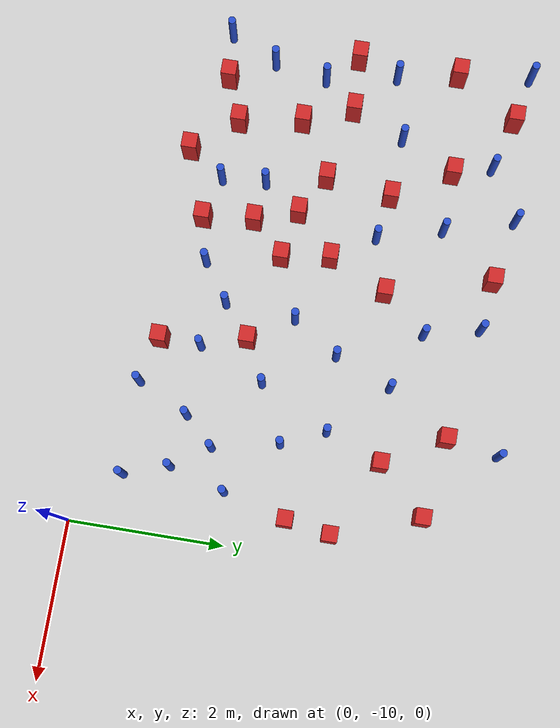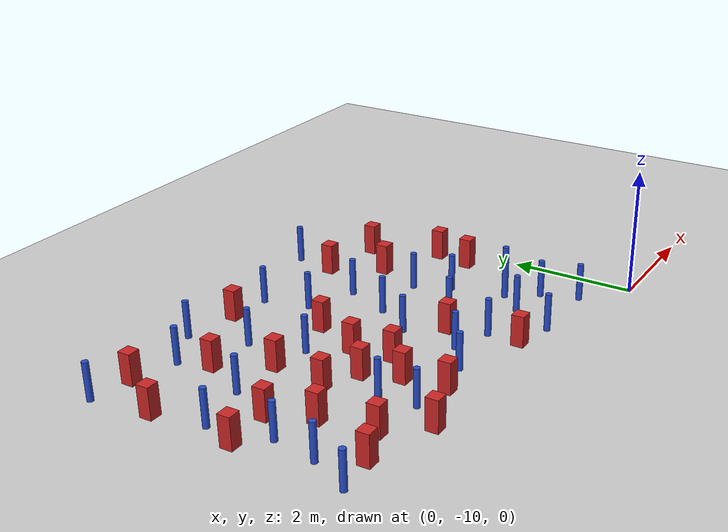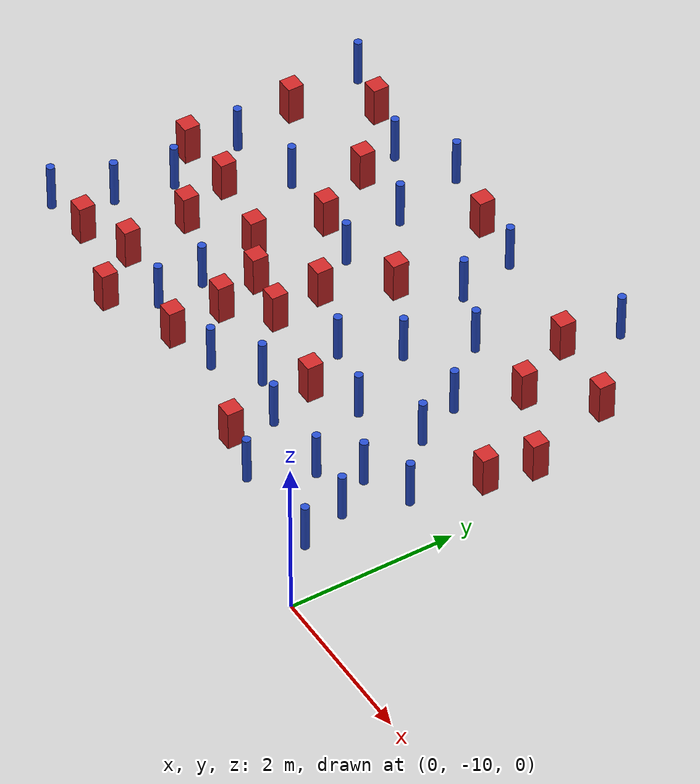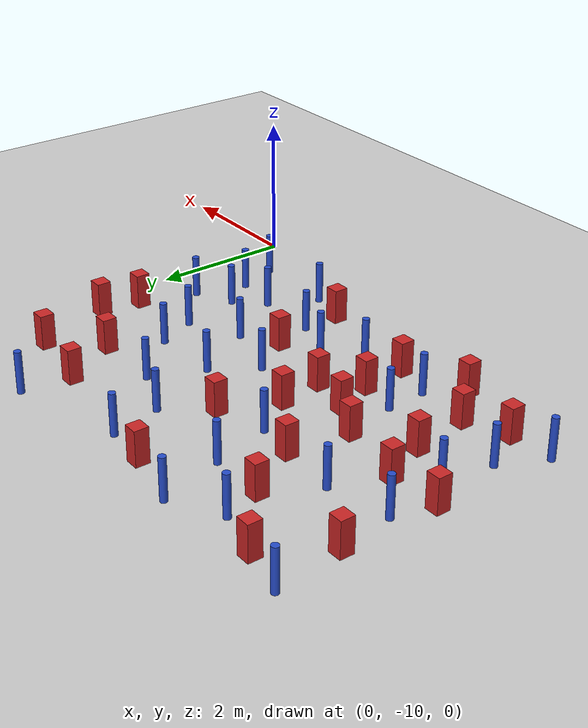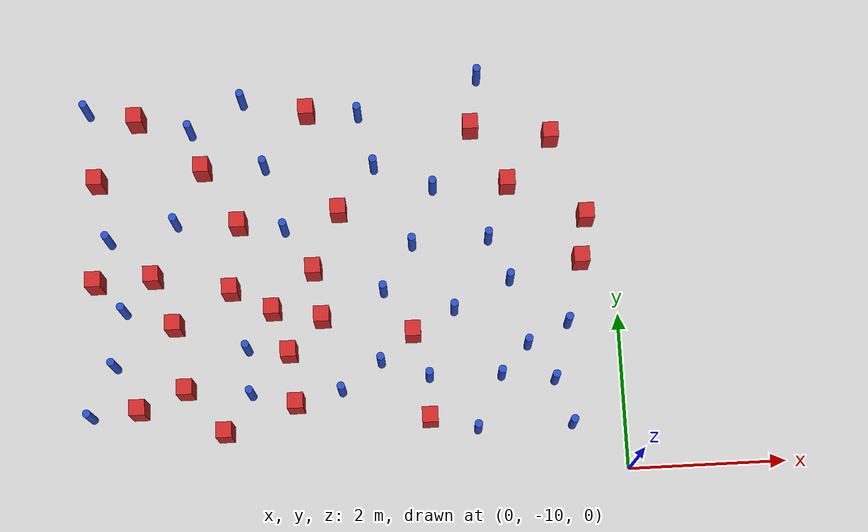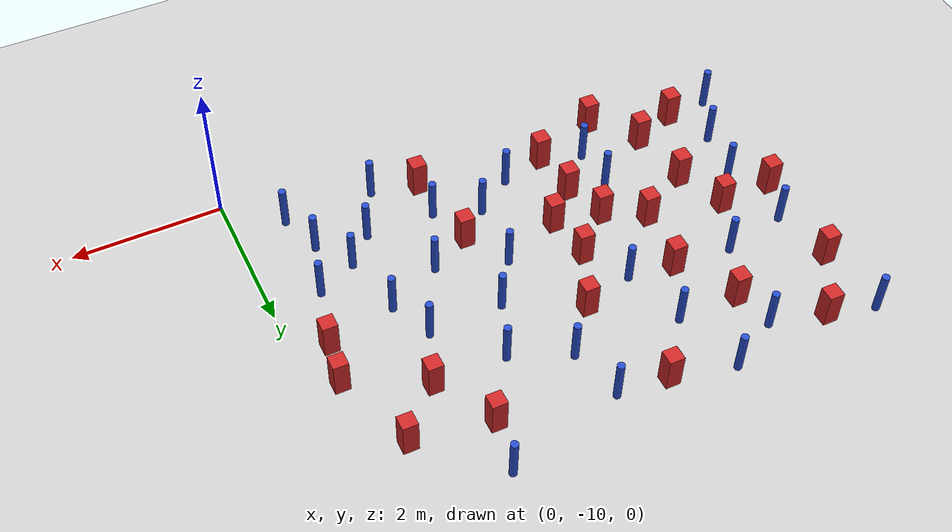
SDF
<sdf version="1.6">
 <world name="default">
  <model name="ground_plane">
   <static>1</static>
   <link name="link">
    <collision name="collision">
     <geometry><plane><normal>0 0 1</normal><size>100 100</size></plane></geometry>
     <surface><friction><ode><mu>100</mu><mu2>50</mu2></ode></friction></surface>
    </collision>
    <visual name="visual">
     <cast_shadows>0</cast_shadows>
     <geometry><plane><normal>0 0 1</normal><size>100 100</size></plane></geometry>
     <material>
      <ambient>1.0 1.0 1.0 1.0</ambient>
      <diffuse>0.8 0.8 0.8 1.0</diffuse>
      <specular>0.01 0.01 0.01 1.000000</specular>
     </material>
    </visual>
   </link>
  </model>
  <model name="square_post_obstacle2">
   <static>true</static>
   <pose>-3.89636047755 -7.26375916254 8.22691968438e-08 7.2212513382e-06 -7.54495500217e-07 2.29674213826e-05</pose>
   <link name="link">
    <pose>0 0 0.25 0 -0 0</pose>
    <inertial>
     <mass>100</mass>
     <inertia>
      <ixx>0.166667</ixx>
      <ixy>0</ixy>
      <ixz>0</ixz>
      <iyy>0.166667</iyy>
      <iyz>0</iyz>
      <izz>0.166667</izz>
     </inertia>
    </inertial>
    <collision name="collision"><geometry><box><size>.2 .2 .5</size></box></geometry></collision>
    <visual name="visual">
     <geometry><box><size>.2 .2 .5</size></box></geometry>
     <material>
      <script><name>Gazebo/Red</name><uri>file://media/materials/scripts/gazebo.material</uri></script>
     </material>
    </visual>
   </link>
  </model>
  <model name="square_post_obstacle4">
   <static>true</static>
   <pose>-2.48618194131 -9.25337838054 8.22691968438e-08 7.22125133819e-06 -7.54495500217e-07 2.29674213826e-05</pose>
   <link name="link">
    <pose>0 0 0.25 0 -0 0</pose>
    <inertial>
     <mass>100</mass>
     <inertia>
      <ixx>0.166667</ixx>
      <ixy>0</ixy>
      <ixz>0</ixz>
      <iyy>0.166667</iyy>
      <iyz>0</iyz>
      <izz>0.166667</izz>
     </inertia>
    </inertial>
    <collision name="collision"><geometry><box><size>.2 .2 .5</size></box></geometry></collision>
    <visual name="visual">
     <geometry><box><size>.2 .2 .5</size></box></geometry>
     <material>
      <script><name>Gazebo/Red</name><uri>file://media/materials/scripts/gazebo.material</uri></script>
     </material>
    </visual>
   </link>
  </model>
  <model name="pole_obstacle5">
   <static>true</static>
   <pose>-6.3331540744 -7.70402549706 2.88873142074e-08 -9.90536690842e-09 4.60219948965e-07 -1.20965994976e-07</pose>
   <link name="link">
    <pose>0 0 0.3 0 -0 0</pose>
    <inertial>
     <mass>1</mass>
     <inertia><ixx>0.145833</ixx><ixy>0</ixy><ixz>0</ixz><iyy>0.145833</iyy><iyz>0</iyz><izz>0.125</izz></inertia>
    </inertial>
    <collision name="collision">
     <geometry><cylinder><radius>0.05</radius><length>.6</length></cylinder></geometry>
    </collision>
    <visual name="visual">
     <geometry><cylinder><radius>0.05</radius><length>.6</length></cylinder></geometry>
     <material>
      <script><name>Gazebo/Blue</name><uri>file://media/materials/scripts/gazebo.material</uri></script>
     </material>
    </visual>
   </link>
  </model>
  <model name="square_post_obstacle9">
   <static>true</static>
   <pose>-0.449228527882 -7.28937916096 8.22691968438e-08 7.22125133819e-06 -7.54495500217e-07 2.29674213826e-05</pose>
   <link name="link">
    <pose>0 0 0.25 0 -0 0</pose>
    <inertial>
     <mass>100</mass>
     <inertia>
      <ixx>0.166667</ixx>
      <ixy>0</ixy>
      <ixz>0</ixz>
      <iyy>0.166667</iyy>
      <iyz>0</iyz>
      <izz>0.166667</izz>
     </inertia>
    </inertial>
    <collision name="collision"><geometry><box><size>.2 .2 .5</size></box></geometry></collision>
    <visual name="visual">
     <geometry><box><size>.2 .2 .5</size></box></geometry>
     <material>
      <script><name>Gazebo/Red</name><uri>file://media/materials/scripts/gazebo.material</uri></script>
     </material>
    </visual>
   </link>
  </model>
  <model name="square_post_obstacle12">
   <static>true</static>
   <pose>-6.15789999557 -8.98425494917 8.22691968438e-08 7.22125133819e-06 -7.54495500217e-07 2.29674213826e-05</pose>
   <link name="link">
    <pose>0 0 0.25 0 -0 0</pose>
    <inertial>
     <mass>100</mass>
     <inertia>
      <ixx>0.166667</ixx>
      <ixy>0</ixy>
      <ixz>0</ixz>
      <iyy>0.166667</iyy>
      <iyz>0</iyz>
      <izz>0.166667</izz>
     </inertia>
    </inertial>
    <collision name="collision"><geometry><box><size>.2 .2 .5</size></box></geometry></collision>
    <visual name="visual">
     <geometry><box><size>.2 .2 .5</size></box></geometry>
     <material>
      <script><name>Gazebo/Red</name><uri>file://media/materials/scripts/gazebo.material</uri></script>
     </material>
    </visual>
   </link>
  </model>
  <model name="pole_obstacle11">
   <static>true</static>
   <pose>-0.662988003592 -8.11105628578 2.88873142074e-08 -9.90536690779e-09 4.60219948967e-07 -1.20965994975e-07</pose>
   <link name="link">
    <pose>0 0 0.3 0 -0 0</pose>
    <inertial>
     <mass>1</mass>
     <inertia><ixx>0.145833</ixx><ixy>0</ixy><ixz>0</ixz><iyy>0.145833</iyy><iyz>0</iyz><izz>0.125</izz></inertia>
    </inertial>
    <collision name="collision">
     <geometry><cylinder><radius>0.05</radius><length>.6</length></cylinder></geometry>
    </collision>
    <visual name="visual">
     <geometry><cylinder><radius>0.05</radius><length>.6</length></cylinder></geometry>
     <material>
      <script><name>Gazebo/Blue</name><uri>file://media/materials/scripts/gazebo.material</uri></script>
     </material>
    </visual>
   </link>
  </model>
  <model name="pole_obstacle12">
   <static>true</static>
   <pose>-2.11108152988 -7.86755441198 2.88873142074e-08 -9.90536689859e-09 4.60219948989e-07 -1.20965994961e-07</pose>
   <link name="link">
    <pose>0 0 0.3 0 -0 0</pose>
    <inertial>
     <mass>1</mass>
     <inertia><ixx>0.145833</ixx><ixy>0</ixy><ixz>0</ixz><iyy>0.145833</iyy><iyz>0</iyz><izz>0.125</izz></inertia>
    </inertial>
    <collision name="collision">
     <geometry><cylinder><radius>0.05</radius><length>.6</length></cylinder></geometry>
    </collision>
    <visual name="visual">
     <geometry><cylinder><radius>0.05</radius><length>.6</length></cylinder></geometry>
     <material>
      <script><name>Gazebo/Blue</name><uri>file://media/materials/scripts/gazebo.material</uri></script>
     </material>
    </visual>
   </link>
  </model>
  <model name="pole_obstacle13">
   <static>true</static>
   <pose>-6.76908547282 -9.04808310177 2.88873142074e-08 -9.9053668967e-09 4.60219948993e-07 -1.20965994957e-07</pose>
   <link name="link">
    <pose>0 0 0.3 0 -0 0</pose>
    <inertial>
     <mass>1</mass>
     <inertia><ixx>0.145833</ixx><ixy>0</ixy><ixz>0</ixz><iyy>0.145833</iyy><iyz>0</iyz><izz>0.125</izz></inertia>
    </inertial>
    <collision name="collision">
     <geometry><cylinder><radius>0.05</radius><length>.6</length></cylinder></geometry>
    </collision>
    <visual name="visual">
     <geometry><cylinder><radius>0.05</radius><length>.6</length></cylinder></geometry>
     <material>
      <script><name>Gazebo/Blue</name><uri>file://media/materials/scripts/gazebo.material</uri></script>
     </material>
    </visual>
   </link>
  </model>
  <model name="pole_obstacle15">
   <static>true</static>
   <pose>-3.24683174081 -5.19850735674 2.88873142074e-08 -9.90536689859e-09 4.60219948989e-07 -1.20965994961e-07</pose>
   <link name="link">
    <pose>0 0 0.3 0 -0 0</pose>
    <inertial>
     <mass>1</mass>
     <inertia><ixx>0.145833</ixx><ixy>0</ixy><ixz>0</ixz><iyy>0.145833</iyy><iyz>0</iyz><izz>0.125</izz></inertia>
    </inertial>
    <collision name="collision">
     <geometry><cylinder><radius>0.05</radius><length>.6</length></cylinder></geometry>
    </collision>
    <visual name="visual">
     <geometry><cylinder><radius>0.05</radius><length>.6</length></cylinder></geometry>
     <material>
      <script><name>Gazebo/Blue</name><uri>file://media/materials/scripts/gazebo.material</uri></script>
     </material>
    </visual>
   </link>
  </model>
  <model name="square_post_obstacle25">
   <static>true</static>
   <pose>-4.43706722593 -7.76636865377 8.22691968438e-08 7.22125133819e-06 -7.54495500217e-07 2.29674213826e-05</pose>
   <link name="link">
    <pose>0 0 0.25 0 -0 0</pose>
    <inertial>
     <mass>100</mass>
     <inertia>
      <ixx>0.166667</ixx>
      <ixy>0</ixy>
      <ixz>0</ixz>
      <iyy>0.166667</iyy>
      <iyz>0</iyz>
      <izz>0.166667</izz>
     </inertia>
    </inertial>
    <collision name="collision"><geometry><box><size>.2 .2 .5</size></box></geometry></collision>
    <visual name="visual">
     <geometry><box><size>.2 .2 .5</size></box></geometry>
     <material>
      <script><name>Gazebo/Red</name><uri>file://media/materials/scripts/gazebo.material</uri></script>
     </material>
    </visual>
   </link>
  </model>
  <model name="square_post_obstacle26">
   <static>true</static>
   <pose>-0.35169647295 -6.71353066999 8.22691968438e-08 7.22125133819e-06 -7.54495500217e-07 2.29674213826e-05</pose>
   <link name="link">
    <pose>0 0 0.25 0 -0 0</pose>
    <inertial>
     <mass>100</mass>
     <inertia>
      <ixx>0.166667</ixx>
      <ixy>0</ixy>
      <ixz>0</ixz>
      <iyy>0.166667</iyy>
      <iyz>0</iyz>
      <izz>0.166667</izz>
     </inertia>
    </inertial>
    <collision name="collision"><geometry><box><size>.2 .2 .5</size></box></geometry></collision>
    <visual name="visual">
     <geometry><box><size>.2 .2 .5</size></box></geometry>
     <material>
      <script><name>Gazebo/Red</name><uri>file://media/materials/scripts/gazebo.material</uri></script>
     </material>
    </visual>
   </link>
  </model>
  <model name="pole_obstacle26">
   <static>true</static>
   <pose>-3.07525640674 -8.50470243875 2.88873142074e-08 -9.9053668994e-09 4.60219948987e-07 -1.20965994963e-07</pose>
   <link name="link">
    <pose>0 0 0.3 0 -0 0</pose>
    <inertial>
     <mass>1</mass>
     <inertia><ixx>0.145833</ixx><ixy>0</ixy><ixz>0</ixz><iyy>0.145833</iyy><iyz>0</iyz><izz>0.125</izz></inertia>
    </inertial>
    <collision name="collision">
     <geometry><cylinder><radius>0.05</radius><length>.6</length></cylinder></geometry>
    </collision>
    <visual name="visual">
     <geometry><cylinder><radius>0.05</radius><length>.6</length></cylinder></geometry>
     <material>
      <script><name>Gazebo/Blue</name><uri>file://media/materials/scripts/gazebo.material</uri></script>
     </material>
    </visual>
   </link>
  </model>
  <model name="pole_obstacle27">
   <static>true</static>
   <pose>-4.75894808554 -4.94832124535 2.88873142074e-08 -9.90536690842e-09 4.60219948965e-07 -1.20965994976e-07</pose>
   <link name="link">
    <pose>0 0 0.3 0 -0 0</pose>
    <inertial>
     <mass>1</mass>
     <inertia><ixx>0.145833</ixx><ixy>0</ixy><ixz>0</ixz><iyy>0.145833</iyy><iyz>0</iyz><izz>0.125</izz></inertia>
    </inertial>
    <collision name="collision">
     <geometry><cylinder><radius>0.05</radius><length>.6</length></cylinder></geometry>
    </collision>
    <visual name="visual">
     <geometry><cylinder><radius>0.05</radius><length>.6</length></cylinder></geometry>
     <material>
      <script><name>Gazebo/Blue</name><uri>file://media/materials/scripts/gazebo.material</uri></script>
     </material>
    </visual>
   </link>
  </model>
  <model name="square_post_obstacle35">
   <static>true</static>
   <pose>-5.56060195127 -8.75042651718 8.22691968438e-08 7.22125133819e-06 -7.54495500217e-07 2.29674213826e-05</pose>
   <link name="link">
    <pose>0 0 0.25 0 -0 0</pose>
    <inertial>
     <mass>100</mass>
     <inertia>
      <ixx>0.166667</ixx>
      <ixy>0</ixy>
      <ixz>0</ixz>
      <iyy>0.166667</iyy>
      <iyz>0</iyz>
      <izz>0.166667</izz>
     </inertia>
    </inertial>
    <collision name="collision"><geometry><box><size>.2 .2 .5</size></box></geometry></collision>
    <visual name="visual">
     <geometry><box><size>.2 .2 .5</size></box></geometry>
     <material>
      <script><name>Gazebo/Red</name><uri>file://media/materials/scripts/gazebo.material</uri></script>
     </material>
    </visual>
   </link>
  </model>
  <model name="pole_obstacle45">
   <static>true</static>
   <pose>-1.37575383881 -7.50950586646 2.88873142074e-08 -9.90536689852e-09 4.60219948989e-07 -1.2096599496e-07</pose>
   <link name="link">
    <pose>0 0 0.3 0 -0 0</pose>
    <inertial>
     <mass>1</mass>
     <inertia><ixx>0.145833</ixx><ixy>0</ixy><ixz>0</ixz><iyy>0.145833</iyy><iyz>0</iyz><izz>0.125</izz></inertia>
    </inertial>
    <collision name="collision">
     <geometry><cylinder><radius>0.05</radius><length>.6</length></cylinder></geometry>
    </collision>
    <visual name="visual">
     <geometry><cylinder><radius>0.05</radius><length>.6</length></cylinder></geometry>
     <material>
      <script><name>Gazebo/Blue</name><uri>file://media/materials/scripts/gazebo.material</uri></script>
     </material>
    </visual>
   </link>
  </model>
  <model name="pole_obstacle46">
   <static>true</static>
   <pose>-4.73731511569 -8.84574469141 2.88873142074e-08 -9.9053668967e-09 4.60219948993e-07 -1.20965994957e-07</pose>
   <link name="link">
    <pose>0 0 0.3 0 -0 0</pose>
    <inertial>
     <mass>1</mass>
     <inertia><ixx>0.145833</ixx><ixy>0</ixy><ixz>0</ixz><iyy>0.145833</iyy><iyz>0</iyz><izz>0.125</izz></inertia>
    </inertial>
    <collision name="collision">
     <geometry><cylinder><radius>0.05</radius><length>.6</length></cylinder></geometry>
    </collision>
    <visual name="visual">
     <geometry><cylinder><radius>0.05</radius><length>.6</length></cylinder></geometry>
     <material>
      <script><name>Gazebo/Blue</name><uri>file://media/materials/scripts/gazebo.material</uri></script>
     </material>
    </visual>
   </link>
  </model>
  <model name="square_post_obstacle49">
   <static>true</static>
   <pose>-5.29686284431 -5.85164530789 8.22691968438e-08 7.22125133819e-06 -7.54495500217e-07 2.29674213826e-05</pose>
   <link name="link">
    <pose>0 0 0.25 0 -0 0</pose>
    <inertial>
     <mass>100</mass>
     <inertia>
      <ixx>0.166667</ixx>
      <ixy>0</ixy>
      <ixz>0</ixz>
      <iyy>0.166667</iyy>
      <iyz>0</iyz>
      <izz>0.166667</izz>
     </inertia>
    </inertial>
    <collision name="collision"><geometry><box><size>.2 .2 .5</size></box></geometry></collision>
    <visual name="visual">
     <geometry><box><size>.2 .2 .5</size></box></geometry>
     <material>
      <script><name>Gazebo/Red</name><uri>file://media/materials/scripts/gazebo.material</uri></script>
     </material>
    </visual>
   </link>
  </model>
  <model name="square_post_obstacle56">
   <static>true</static>
   <pose>-2.65368111789 -8.14309186343 8.22691968438e-08 7.22125133819e-06 -7.54495500217e-07 2.29674213826e-05</pose>
   <link name="link">
    <pose>0 0 0.25 0 -0 0</pose>
    <inertial>
     <mass>100</mass>
     <inertia>
      <ixx>0.166667</ixx>
      <ixy>0</ixy>
      <ixz>0</ixz>
      <iyy>0.166667</iyy>
      <iyz>0</iyz>
      <izz>0.166667</izz>
     </inertia>
    </inertial>
    <collision name="collision"><geometry><box><size>.2 .2 .5</size></box></geometry></collision>
    <visual name="visual">
     <geometry><box><size>.2 .2 .5</size></box></geometry>
     <material>
      <script><name>Gazebo/Red</name><uri>file://media/materials/scripts/gazebo.material</uri></script>
     </material>
    </visual>
   </link>
  </model>
  <model name="pole_obstacle55">
   <static>true</static>
   <pose>-4.77219349277 -8.26320612879 2.88873142074e-08 -9.9053668967e-09 4.60219948993e-07 -1.20965994957e-07</pose>
   <link name="link">
    <pose>0 0 0.3 0 -0 0</pose>
    <inertial>
     <mass>1</mass>
     <inertia><ixx>0.145833</ixx><ixy>0</ixy><ixz>0</ixz><iyy>0.145833</iyy><iyz>0</iyz><izz>0.125</izz></inertia>
    </inertial>
    <collision name="collision">
     <geometry><cylinder><radius>0.05</radius><length>.6</length></cylinder></geometry>
    </collision>
    <visual name="visual">
     <geometry><cylinder><radius>0.05</radius><length>.6</length></cylinder></geometry>
     <material>
      <script><name>Gazebo/Blue</name><uri>file://media/materials/scripts/gazebo.material</uri></script>
     </material>
    </visual>
   </link>
  </model>
  <model name="pole_obstacle56">
   <static>true</static>
   <pose>-2.46863119547 -8.72613846341 2.88873142074e-08 -9.90536692318e-09 4.6021994893e-07 -1.20965994988e-07</pose>
   <link name="link">
    <pose>0 0 0.3 0 -0 0</pose>
    <inertial>
     <mass>1</mass>
     <inertia><ixx>0.145833</ixx><ixy>0</ixy><ixz>0</ixz><iyy>0.145833</iyy><iyz>0</iyz><izz>0.125</izz></inertia>
    </inertial>
    <collision name="collision">
     <geometry><cylinder><radius>0.05</radius><length>.6</length></cylinder></geometry>
    </collision>
    <visual name="visual">
     <geometry><cylinder><radius>0.05</radius><length>.6</length></cylinder></geometry>
     <material>
      <script><name>Gazebo/Blue</name><uri>file://media/materials/scripts/gazebo.material</uri></script>
     </material>
    </visual>
   </link>
  </model>
  <model name="pole_obstacle59">
   <static>true</static>
   <pose>-3.58671260554 -8.85475888488 2.88873142074e-08 -9.90536692318e-09 4.6021994893e-07 -1.20965994988e-07</pose>
   <link name="link">
    <pose>0 0 0.3 0 -0 0</pose>
    <inertial>
     <mass>1</mass>
     <inertia><ixx>0.145833</ixx><ixy>0</ixy><ixz>0</ixz><iyy>0.145833</iyy><iyz>0</iyz><izz>0.125</izz></inertia>
    </inertial>
    <collision name="collision">
     <geometry><cylinder><radius>0.05</radius><length>.6</length></cylinder></geometry>
    </collision>
    <visual name="visual">
     <geometry><cylinder><radius>0.05</radius><length>.6</length></cylinder></geometry>
     <material>
      <script><name>Gazebo/Blue</name><uri>file://media/materials/scripts/gazebo.material</uri></script>
     </material>
    </visual>
   </link>
  </model>
  <model name="pole_obstacle64">
   <static>true</static>
   <pose>-6.52138911509 -6.76289656208 2.88873142074e-08 -9.90536690842e-09 4.60219948965e-07 -1.20965994976e-07</pose>
   <link name="link">
    <pose>0 0 0.3 0 -0 0</pose>
    <inertial>
     <mass>1</mass>
     <inertia><ixx>0.145833</ixx><ixy>0</ixy><ixz>0</ixz><iyy>0.145833</iyy><iyz>0</iyz><izz>0.125</izz></inertia>
    </inertial>
    <collision name="collision">
     <geometry><cylinder><radius>0.05</radius><length>.6</length></cylinder></geometry>
    </collision>
    <visual name="visual">
     <geometry><cylinder><radius>0.05</radius><length>.6</length></cylinder></geometry>
     <material>
      <script><name>Gazebo/Blue</name><uri>file://media/materials/scripts/gazebo.material</uri></script>
     </material>
    </visual>
   </link>
  </model>
  <model name="pole_obstacle66">
   <static>true</static>
   <pose>-6.78978489944 -4.99900899168 2.88873142074e-08 -9.90536690842e-09 4.60219948965e-07 -1.20965994976e-07</pose>
   <link name="link">
    <pose>0 0 0.3 0 -0 0</pose>
    <inertial>
     <mass>1</mass>
     <inertia><ixx>0.145833</ixx><ixy>0</ixy><ixz>0</ixz><iyy>0.145833</iyy><iyz>0</iyz><izz>0.125</izz></inertia>
    </inertial>
    <collision name="collision">
     <geometry><cylinder><radius>0.05</radius><length>.6</length></cylinder></geometry>
    </collision>
    <visual name="visual">
     <geometry><cylinder><radius>0.05</radius><length>.6</length></cylinder></geometry>
     <material>
      <script><name>Gazebo/Blue</name><uri>file://media/materials/scripts/gazebo.material</uri></script>
     </material>
    </visual>
   </link>
  </model>
  <model name="square_post_obstacle69">
   <static>true</static>
   <pose>-3.54675876737 -6.49626243647 8.22691968438e-08 7.2212513382e-06 -7.54495500217e-07 2.29674213826e-05</pose>
   <link name="link">
    <pose>0 0 0.25 0 -0 0</pose>
    <inertial>
     <mass>100</mass>
     <inertia>
      <ixx>0.166667</ixx>
      <ixy>0</ixy>
      <ixz>0</ixz>
      <iyy>0.166667</iyy>
      <iyz>0</iyz>
      <izz>0.166667</izz>
     </inertia>
    </inertial>
    <collision name="collision"><geometry><box><size>.2 .2 .5</size></box></geometry></collision>
    <visual name="visual">
     <geometry><box><size>.2 .2 .5</size></box></geometry>
     <material>
      <script><name>Gazebo/Red</name><uri>file://media/materials/scripts/gazebo.material</uri></script>
     </material>
    </visual>
   </link>
  </model>
  <model name="square_post_obstacle75">
   <static>true</static>
   <pose>-4.96418965648 -7.47899994031 8.22691968438e-08 7.2212513382e-06 -7.54495500217e-07 2.29674213826e-05</pose>
   <link name="link">
    <pose>0 0 0.25 0 -0 0</pose>
    <inertial>
     <mass>100</mass>
     <inertia>
      <ixx>0.166667</ixx>
      <ixy>0</ixy>
      <ixz>0</ixz>
      <iyy>0.166667</iyy>
      <iyz>0</iyz>
      <izz>0.166667</izz>
     </inertia>
    </inertial>
    <collision name="collision"><geometry><box><size>.2 .2 .5</size></box></geometry></collision>
    <visual name="visual">
     <geometry><box><size>.2 .2 .5</size></box></geometry>
     <material>
      <script><name>Gazebo/Red</name><uri>file://media/materials/scripts/gazebo.material</uri></script>
     </material>
    </visual>
   </link>
  </model>
  <model name="pole_obstacle79">
   <static>true</static>
   <pose>-0.684390176565 -9.41340301177 2.88873142074e-08 -9.90536690779e-09 4.60219948967e-07 -1.20965994975e-07</pose>
   <link name="link">
    <pose>0 0 0.3 0 -0 0</pose>
    <inertial>
     <mass>1</mass>
     <inertia><ixx>0.145833</ixx><ixy>0</ixy><ixz>0</ixz><iyy>0.145833</iyy><iyz>0</iyz><izz>0.125</izz></inertia>
    </inertial>
    <collision name="collision">
     <geometry><cylinder><radius>0.05</radius><length>.6</length></cylinder></geometry>
    </collision>
    <visual name="visual">
     <geometry><cylinder><radius>0.05</radius><length>.6</length></cylinder></geometry>
     <material>
      <script><name>Gazebo/Blue</name><uri>file://media/materials/scripts/gazebo.material</uri></script>
     </material>
    </visual>
   </link>
  </model>
  <model name="pole_obstacle80">
   <static>true</static>
   <pose>-1.62328064087 -6.9499564604 2.88873142074e-08 -9.90536689852e-09 4.60219948989e-07 -1.2096599496e-07</pose>
   <link name="link">
    <pose>0 0 0.3 0 -0 0</pose>
    <inertial>
     <mass>1</mass>
     <inertia><ixx>0.145833</ixx><ixy>0</ixy><ixz>0</ixz><iyy>0.145833</iyy><iyz>0</iyz><izz>0.125</izz></inertia>
    </inertial>
    <collision name="collision">
     <geometry><cylinder><radius>0.05</radius><length>.6</length></cylinder></geometry>
    </collision>
    <visual name="visual">
     <geometry><cylinder><radius>0.05</radius><length>.6</length></cylinder></geometry>
     <material>
      <script><name>Gazebo/Blue</name><uri>file://media/materials/scripts/gazebo.material</uri></script>
     </material>
    </visual>
   </link>
  </model>
  <model name="pole_obstacle87">
   <static>true</static>
   <pose>-2.61291447551 -6.98226767961 2.88873142074e-08 -9.90536689859e-09 4.60219948989e-07 -1.20965994961e-07</pose>
   <link name="link">
    <pose>0 0 0.3 0 -0 0</pose>
    <inertial>
     <mass>1</mass>
     <inertia><ixx>0.145833</ixx><ixy>0</ixy><ixz>0</ixz><iyy>0.145833</iyy><iyz>0</iyz><izz>0.125</izz></inertia>
    </inertial>
    <collision name="collision">
     <geometry><cylinder><radius>0.05</radius><length>.6</length></cylinder></geometry>
    </collision>
    <visual name="visual">
     <geometry><cylinder><radius>0.05</radius><length>.6</length></cylinder></geometry>
     <material>
      <script><name>Gazebo/Blue</name><uri>file://media/materials/scripts/gazebo.material</uri></script>
     </material>
    </visual>
   </link>
  </model>
  <model name="pole_obstacle89">
   <static>true</static>
   <pose>-1.19253815588 -8.36544223368 2.88873142074e-08 -9.90536690474e-09 4.60219948974e-07 -1.2096599497e-07</pose>
   <link name="link">
    <pose>0 0 0.3 0 -0 0</pose>
    <inertial>
     <mass>1</mass>
     <inertia><ixx>0.145833</ixx><ixy>0</ixy><ixz>0</ixz><iyy>0.145833</iyy><iyz>0</iyz><izz>0.125</izz></inertia>
    </inertial>
    <collision name="collision">
     <geometry><cylinder><radius>0.05</radius><length>.6</length></cylinder></geometry>
    </collision>
    <visual name="visual">
     <geometry><cylinder><radius>0.05</radius><length>.6</length></cylinder></geometry>
     <material>
      <script><name>Gazebo/Blue</name><uri>file://media/materials/scripts/gazebo.material</uri></script>
     </material>
    </visual>
   </link>
  </model>
  <model name="square_post_obstacle86">
   <static>true</static>
   <pose>-6.14922843387 -5.14330189121 8.22691968438e-08 7.22125133819e-06 -7.54495500217e-07 2.29674213826e-05</pose>
   <link name="link">
    <pose>0 0 0.25 0 -0 0</pose>
    <inertial>
     <mass>100</mass>
     <inertia>
      <ixx>0.166667</ixx>
      <ixy>0</ixy>
      <ixz>0</ixz>
      <iyy>0.166667</iyy>
      <iyz>0</iyz>
      <izz>0.166667</izz>
     </inertia>
    </inertial>
    <collision name="collision"><geometry><box><size>.2 .2 .5</size></box></geometry></collision>
    <visual name="visual">
     <geometry><box><size>.2 .2 .5</size></box></geometry>
     <material>
      <script><name>Gazebo/Red</name><uri>file://media/materials/scripts/gazebo.material</uri></script>
     </material>
    </visual>
   </link>
  </model>
  <model name="square_post_obstacle92">
   <static>true</static>
   <pose>-5.69447729584 -7.91459071709 8.22691968438e-08 7.2212513382e-06 -7.54495500217e-07 2.29674213826e-05</pose>
   <link name="link">
    <pose>0 0 0.25 0 -0 0</pose>
    <inertial>
     <mass>100</mass>
     <inertia>
      <ixx>0.166667</ixx>
      <ixy>0</ixy>
      <ixz>0</ixz>
      <iyy>0.166667</iyy>
      <iyz>0</iyz>
      <izz>0.166667</izz>
     </inertia>
    </inertial>
    <collision name="collision"><geometry><box><size>.2 .2 .5</size></box></geometry></collision>
    <visual name="visual">
     <geometry><box><size>.2 .2 .5</size></box></geometry>
     <material>
      <script><name>Gazebo/Red</name><uri>file://media/materials/scripts/gazebo.material</uri></script>
     </material>
    </visual>
   </link>
  </model>
  <model name="pole_obstacle115">
   <static>true</static>
   <pose>-6.46145295159 -8.41067393724 2.88873142074e-08 -9.9053668967e-09 4.60219948993e-07 -1.20965994957e-07</pose>
   <link name="link">
    <pose>0 0 0.3 0 -0 0</pose>
    <inertial>
     <mass>1</mass>
     <inertia><ixx>0.145833</ixx><ixy>0</ixy><ixz>0</ixz><iyy>0.145833</iyy><iyz>0</iyz><izz>0.125</izz></inertia>
    </inertial>
    <collision name="collision">
     <geometry><cylinder><radius>0.05</radius><length>.6</length></cylinder></geometry>
    </collision>
    <visual name="visual">
     <geometry><cylinder><radius>0.05</radius><length>.6</length></cylinder></geometry>
     <material>
      <script><name>Gazebo/Blue</name><uri>file://media/materials/scripts/gazebo.material</uri></script>
     </material>
    </visual>
   </link>
  </model>
  <model name="pole_obstacle117">
   <static>true</static>
   <pose>-1.66165017385 -4.76104854044 2.88873142074e-08 -9.90536689852e-09 4.60219948989e-07 -1.2096599496e-07</pose>
   <link name="link">
    <pose>0 0 0.3 0 -0 0</pose>
    <inertial>
     <mass>1</mass>
     <inertia><ixx>0.145833</ixx><ixy>0</ixy><ixz>0</ixz><iyy>0.145833</iyy><iyz>0</iyz><izz>0.125</izz></inertia>
    </inertial>
    <collision name="collision">
     <geometry><cylinder><radius>0.05</radius><length>.6</length></cylinder></geometry>
    </collision>
    <visual name="visual">
     <geometry><cylinder><radius>0.05</radius><length>.6</length></cylinder></geometry>
     <material>
      <script><name>Gazebo/Blue</name><uri>file://media/materials/scripts/gazebo.material</uri></script>
     </material>
    </visual>
   </link>
  </model>
  <model name="square_post_obstacle103">
   <static>true</static>
   <pose>-1.78194160417 -5.4447768714 8.22691968438e-08 7.2212513382e-06 -7.54495500217e-07 2.29674213826e-05</pose>
   <link name="link">
    <pose>0 0 0.25 0 -0 0</pose>
    <inertial>
     <mass>100</mass>
     <inertia>
      <ixx>0.166667</ixx>
      <ixy>0</ixy>
      <ixz>0</ixz>
      <iyy>0.166667</iyy>
      <iyz>0</iyz>
      <izz>0.166667</izz>
     </inertia>
    </inertial>
    <collision name="collision"><geometry><box><size>.2 .2 .5</size></box></geometry></collision>
    <visual name="visual">
     <geometry><box><size>.2 .2 .5</size></box></geometry>
     <material>
      <script><name>Gazebo/Red</name><uri>file://media/materials/scripts/gazebo.material</uri></script>
     </material>
    </visual>
   </link>
  </model>
  <model name="pole_obstacle132">
   <static>true</static>
   <pose>-4.25553045025 -6.70898258981 2.88873142074e-08 -9.90536690842e-09 4.60219948965e-07 -1.20965994976e-07</pose>
   <link name="link">
    <pose>0 0 0.3 0 -0 0</pose>
    <inertial>
     <mass>1</mass>
     <inertia><ixx>0.145833</ixx><ixy>0</ixy><ixz>0</ixz><iyy>0.145833</iyy><iyz>0</iyz><izz>0.125</izz></inertia>
    </inertial>
    <collision name="collision">
     <geometry><cylinder><radius>0.05</radius><length>.6</length></cylinder></geometry>
    </collision>
    <visual name="visual">
     <geometry><cylinder><radius>0.05</radius><length>.6</length></cylinder></geometry>
     <material>
      <script><name>Gazebo/Blue</name><uri>file://media/materials/scripts/gazebo.material</uri></script>
     </material>
    </visual>
   </link>
  </model>
  <model name="pole_obstacle133">
   <static>true</static>
   <pose>-0.872953767577 -8.83619794201 2.88873142074e-08 -9.90536690779e-09 4.60219948967e-07 -1.20965994975e-07</pose>
   <link name="link">
    <pose>0 0 0.3 0 -0 0</pose>
    <inertial>
     <mass>1</mass>
     <inertia><ixx>0.145833</ixx><ixy>0</ixy><ixz>0</ixz><iyy>0.145833</iyy><iyz>0</iyz><izz>0.125</izz></inertia>
    </inertial>
    <collision name="collision">
     <geometry><cylinder><radius>0.05</radius><length>.6</length></cylinder></geometry>
    </collision>
    <visual name="visual">
     <geometry><cylinder><radius>0.05</radius><length>.6</length></cylinder></geometry>
     <material>
      <script><name>Gazebo/Blue</name><uri>file://media/materials/scripts/gazebo.material</uri></script>
     </material>
    </visual>
   </link>
  </model>
  <model name="pole_obstacle134">
   <static>true</static>
   <pose>-5.44476459315 -5.33722873386 2.88873142074e-08 -9.90536690842e-09 4.60219948965e-07 -1.20965994976e-07</pose>
   <link name="link">
    <pose>0 0 0.3 0 -0 0</pose>
    <inertial>
     <mass>1</mass>
     <inertia><ixx>0.145833</ixx><ixy>0</ixy><ixz>0</ixz><iyy>0.145833</iyy><iyz>0</iyz><izz>0.125</izz></inertia>
    </inertial>
    <collision name="collision">
     <geometry><cylinder><radius>0.05</radius><length>.6</length></cylinder></geometry>
    </collision>
    <visual name="visual">
     <geometry><cylinder><radius>0.05</radius><length>.6</length></cylinder></geometry>
     <material>
      <script><name>Gazebo/Blue</name><uri>file://media/materials/scripts/gazebo.material</uri></script>
     </material>
    </visual>
   </link>
  </model>
  <model name="square_post_obstacle118">
   <static>true</static>
   <pose>-4.17241422393 -8.99302327545 8.22691968438e-08 7.22125133819e-06 -7.54495500217e-07 2.29674213826e-05</pose>
   <link name="link">
    <pose>0 0 0.25 0 -0 0</pose>
    <inertial>
     <mass>100</mass>
     <inertia>
      <ixx>0.166667</ixx>
      <ixy>0</ixy>
      <ixz>0</ixz>
      <iyy>0.166667</iyy>
      <iyz>0</iyz>
      <izz>0.166667</izz>
     </inertia>
    </inertial>
    <collision name="collision"><geometry><box><size>.2 .2 .5</size></box></geometry></collision>
    <visual name="visual">
     <geometry><box><size>.2 .2 .5</size></box></geometry>
     <material>
      <script><name>Gazebo/Red</name><uri>file://media/materials/scripts/gazebo.material</uri></script>
     </material>
    </visual>
   </link>
  </model>
  <model name="pole_obstacle138">
   <static>true</static>
   <pose>-1.55050322977 -8.74398475371 2.88873142074e-08 -9.90536690474e-09 4.60219948974e-07 -1.2096599497e-07</pose>
   <link name="link">
    <pose>0 0 0.3 0 -0 0</pose>
    <inertial>
     <mass>1</mass>
     <inertia><ixx>0.145833</ixx><ixy>0</ixy><ixz>0</ixz><iyy>0.145833</iyy><iyz>0</iyz><izz>0.125</izz></inertia>
    </inertial>
    <collision name="collision">
     <geometry><cylinder><radius>0.05</radius><length>.6</length></cylinder></geometry>
    </collision>
    <visual name="visual">
     <geometry><cylinder><radius>0.05</radius><length>.6</length></cylinder></geometry>
     <material>
      <script><name>Gazebo/Blue</name><uri>file://media/materials/scripts/gazebo.material</uri></script>
     </material>
    </visual>
   </link>
  </model>
  <model name="square_post_obstacle121">
   <static>true</static>
   <pose>-6.70083416481 -7.30691742278 8.22691968438e-08 7.22125133819e-06 -7.54495500217e-07 2.29674213826e-05</pose>
   <link name="link">
    <pose>0 0 0.25 0 -0 0</pose>
    <inertial>
     <mass>100</mass>
     <inertia>
      <ixx>0.166667</ixx>
      <ixy>0</ixy>
      <ixz>0</ixz>
      <iyy>0.166667</iyy>
      <iyz>0</iyz>
      <izz>0.166667</izz>
     </inertia>
    </inertial>
    <collision name="collision"><geometry><box><size>.2 .2 .5</size></box></geometry></collision>
    <visual name="visual">
     <geometry><box><size>.2 .2 .5</size></box></geometry>
     <material>
      <script><name>Gazebo/Red</name><uri>file://media/materials/scripts/gazebo.material</uri></script>
     </material>
    </visual>
   </link>
  </model>
  <model name="square_post_obstacle127">
   <static>true</static>
   <pose>-3.80651085471 -7.8967626984 8.22691968438e-08 7.22125133819e-06 -7.54495500217e-07 2.29674213826e-05</pose>
   <link name="link">
    <pose>0 0 0.25 0 -0 0</pose>
    <inertial>
     <mass>100</mass>
     <inertia>
      <ixx>0.166667</ixx>
      <ixy>0</ixy>
      <ixz>0</ixz>
      <iyy>0.166667</iyy>
      <iyz>0</iyz>
      <izz>0.166667</izz>
     </inertia>
    </inertial>
    <collision name="collision"><geometry><box><size>.2 .2 .5</size></box></geometry></collision>
    <visual name="visual">
     <geometry><box><size>.2 .2 .5</size></box></geometry>
     <material>
      <script><name>Gazebo/Red</name><uri>file://media/materials/scripts/gazebo.material</uri></script>
     </material>
    </visual>
   </link>
  </model>
  <model name="pole_obstacle144">
   <static>true</static>
   <pose>-2.31144658775 -6.24040688717 2.88873142074e-08 -9.90536689859e-09 4.60219948989e-07 -1.20965994961e-07</pose>
   <link name="link">
    <pose>0 0 0.3 0 -0 0</pose>
    <inertial>
     <mass>1</mass>
     <inertia><ixx>0.145833</ixx><ixy>0</ixy><ixz>0</ixz><iyy>0.145833</iyy><iyz>0</iyz><izz>0.125</izz></inertia>
    </inertial>
    <collision name="collision">
     <geometry><cylinder><radius>0.05</radius><length>.6</length></cylinder></geometry>
    </collision>
    <visual name="visual">
     <geometry><cylinder><radius>0.05</radius><length>.6</length></cylinder></geometry>
     <material>
      <script><name>Gazebo/Blue</name><uri>file://media/materials/scripts/gazebo.material</uri></script>
     </material>
    </visual>
   </link>
  </model>
  <model name="pole_obstacle152">
   <static>true</static>
   <pose>-1.88630978995 -9.41662377118 2.88873142074e-08 -9.90536690474e-09 4.60219948974e-07 -1.2096599497e-07</pose>
   <link name="link">
    <pose>0 0 0.3 0 -0 0</pose>
    <inertial>
     <mass>1</mass>
     <inertia><ixx>0.145833</ixx><ixy>0</ixy><ixz>0</ixz><iyy>0.145833</iyy><iyz>0</iyz><izz>0.125</izz></inertia>
    </inertial>
    <collision name="collision">
     <geometry><cylinder><radius>0.05</radius><length>.6</length></cylinder></geometry>
    </collision>
    <visual name="visual">
     <geometry><cylinder><radius>0.05</radius><length>.6</length></cylinder></geometry>
     <material>
      <script><name>Gazebo/Blue</name><uri>file://media/materials/scripts/gazebo.material</uri></script>
     </material>
    </visual>
   </link>
  </model>
  <model name="square_post_obstacle156">
   <static>true</static>
   <pose>-6.67400761943 -5.95639927334 8.22691968438e-08 7.22125133819e-06 -7.54495500217e-07 2.29674213826e-05</pose>
   <link name="link">
    <pose>0 0 0.25 0 -0 0</pose>
    <inertial>
     <mass>100</mass>
     <inertia>
      <ixx>0.166667</ixx>
      <ixy>0</ixy>
      <ixz>0</ixz>
      <iyy>0.166667</iyy>
      <iyz>0</iyz>
      <izz>0.166667</izz>
     </inertia>
    </inertial>
    <collision name="collision"><geometry><box><size>.2 .2 .5</size></box></geometry></collision>
    <visual name="visual">
     <geometry><box><size>.2 .2 .5</size></box></geometry>
     <material>
      <script><name>Gazebo/Red</name><uri>file://media/materials/scripts/gazebo.material</uri></script>
     </material>
    </visual>
   </link>
  </model>
  <model name="pole_obstacle164">
   <static>true</static>
   <pose>-5.65543125389 -6.57054654767 2.88873142074e-08 -9.90536690842e-09 4.60219948965e-07 -1.20965994976e-07</pose>
   <link name="link">
    <pose>0 0 0.3 0 -0 0</pose>
    <inertial>
     <mass>1</mass>
     <inertia><ixx>0.145833</ixx><ixy>0</ixy><ixz>0</ixz><iyy>0.145833</iyy><iyz>0</iyz><izz>0.125</izz></inertia>
    </inertial>
    <collision name="collision">
     <geometry><cylinder><radius>0.05</radius><length>.6</length></cylinder></geometry>
    </collision>
    <visual name="visual">
     <geometry><cylinder><radius>0.05</radius><length>.6</length></cylinder></geometry>
     <material>
      <script><name>Gazebo/Blue</name><uri>file://media/materials/scripts/gazebo.material</uri></script>
     </material>
    </visual>
   </link>
  </model>
  <model name="pole_obstacle167">
   <static>true</static>
   <pose>-3.06802950106 -5.9171966476 2.88873142074e-08 -9.90536689859e-09 4.60219948989e-07 -1.20965994961e-07</pose>
   <link name="link">
    <pose>0 0 0.3 0 -0 0</pose>
    <inertial>
     <mass>1</mass>
     <inertia><ixx>0.145833</ixx><ixy>0</ixy><ixz>0</ixz><iyy>0.145833</iyy><iyz>0</iyz><izz>0.125</izz></inertia>
    </inertial>
    <collision name="collision">
     <geometry><cylinder><radius>0.05</radius><length>.6</length></cylinder></geometry>
    </collision>
    <visual name="visual">
     <geometry><cylinder><radius>0.05</radius><length>.6</length></cylinder></geometry>
     <material>
      <script><name>Gazebo/Blue</name><uri>file://media/materials/scripts/gazebo.material</uri></script>
     </material>
    </visual>
   </link>
  </model>
  <model name="pole_obstacle178">
   <static>true</static>
   <pose>-3.00788100357 -7.58339173784 2.88873142074e-08 -9.90536689859e-09 4.60219948989e-07 -1.20965994961e-07</pose>
   <link name="link">
    <pose>0 0 0.3 0 -0 0</pose>
    <inertial>
     <mass>1</mass>
     <inertia><ixx>0.145833</ixx><ixy>0</ixy><ixz>0</ixz><iyy>0.145833</iyy><iyz>0</iyz><izz>0.125</izz></inertia>
    </inertial>
    <collision name="collision">
     <geometry><cylinder><radius>0.05</radius><length>.6</length></cylinder></geometry>
    </collision>
    <visual name="visual">
     <geometry><cylinder><radius>0.05</radius><length>.6</length></cylinder></geometry>
     <material>
      <script><name>Gazebo/Blue</name><uri>file://media/materials/scripts/gazebo.material</uri></script>
     </material>
    </visual>
   </link>
  </model>
  <model name="square_post_obstacle171">
   <static>true</static>
   <pose>-5.07490195831 -9.31877068567 8.22691968438e-08 7.22125133819e-06 -7.54495500217e-07 2.29674213826e-05</pose>
   <link name="link">
    <pose>0 0 0.25 0 -0 0</pose>
    <inertial>
     <mass>100</mass>
     <inertia>
      <ixx>0.166667</ixx>
      <ixy>0</ixy>
      <ixz>0</ixz>
      <iyy>0.166667</iyy>
      <iyz>0</iyz>
      <izz>0.166667</izz>
     </inertia>
    </inertial>
    <collision name="collision"><geometry><box><size>.2 .2 .5</size></box></geometry></collision>
    <visual name="visual">
     <geometry><box><size>.2 .2 .5</size></box></geometry>
     <material>
      <script><name>Gazebo/Red</name><uri>file://media/materials/scripts/gazebo.material</uri></script>
     </material>
    </visual>
   </link>
  </model>
  <model name="pole_obstacle187">
   <static>true</static>
   <pose>-4.49115116774 -5.860011801 2.88873142074e-08 -9.90536690842e-09 4.60219948965e-07 -1.20965994976e-07</pose>
   <link name="link">
    <pose>0 0 0.3 0 -0 0</pose>
    <inertial>
     <mass>1</mass>
     <inertia><ixx>0.145833</ixx><ixy>0</ixy><ixz>0</ixz><iyy>0.145833</iyy><iyz>0</iyz><izz>0.125</izz></inertia>
    </inertial>
    <collision name="collision">
     <geometry><cylinder><radius>0.05</radius><length>.6</length></cylinder></geometry>
    </collision>
    <visual name="visual">
     <geometry><cylinder><radius>0.05</radius><length>.6</length></cylinder></geometry>
     <material>
      <script><name>Gazebo/Blue</name><uri>file://media/materials/scripts/gazebo.material</uri></script>
     </material>
    </visual>
   </link>
  </model>
  <model name="square_post_obstacle179">
   <static>true</static>
   <pose>-5.96167865356 -7.27007121081 8.22691968438e-08 7.22125133819e-06 -7.54495500217e-07 2.29674213826e-05</pose>
   <link name="link">
    <pose>0 0 0.25 0 -0 0</pose>
    <inertial>
     <mass>100</mass>
     <inertia>
      <ixx>0.166667</ixx>
      <ixy>0</ixy>
      <ixz>0</ixz>
      <iyy>0.166667</iyy>
      <iyz>0</iyz>
      <izz>0.166667</izz>
     </inertia>
    </inertial>
    <collision name="collision"><geometry><box><size>.2 .2 .5</size></box></geometry></collision>
    <visual name="visual">
     <geometry><box><size>.2 .2 .5</size></box></geometry>
     <material>
      <script><name>Gazebo/Red</name><uri>file://media/materials/scripts/gazebo.material</uri></script>
     </material>
    </visual>
   </link>
  </model>
  <model name="square_post_obstacle183">
   <static>true</static>
   <pose>-4.24294042892 -8.32735668573 8.22691968438e-08 7.22125133819e-06 -7.54495500217e-07 2.29674213826e-05</pose>
   <link name="link">
    <pose>0 0 0.25 0 -0 0</pose>
    <inertial>
     <mass>100</mass>
     <inertia>
      <ixx>0.166667</ixx>
      <ixy>0</ixy>
      <ixz>0</ixz>
      <iyy>0.166667</iyy>
      <iyz>0</iyz>
      <izz>0.166667</izz>
     </inertia>
    </inertial>
    <collision name="collision"><geometry><box><size>.2 .2 .5</size></box></geometry></collision>
    <visual name="visual">
     <geometry><box><size>.2 .2 .5</size></box></geometry>
     <material>
      <script><name>Gazebo/Red</name><uri>file://media/materials/scripts/gazebo.material</uri></script>
     </material>
    </visual>
   </link>
  </model>
  <model name="square_post_obstacle210">
   <static>true</static>
   <pose>-1.34083047322 -6.22581814713 8.22691968438e-08 7.2212513382e-06 -7.54495500217e-07 2.29674213826e-05</pose>
   <link name="link">
    <pose>0 0 0.25 0 -0 0</pose>
    <inertial>
     <mass>100</mass>
     <inertia>
      <ixx>0.166667</ixx>
      <ixy>0</ixy>
      <ixz>0</ixz>
      <iyy>0.166667</iyy>
      <iyz>0</iyz>
      <izz>0.166667</izz>
     </inertia>
    </inertial>
    <collision name="collision"><geometry><box><size>.2 .2 .5</size></box></geometry></collision>
    <visual name="visual">
     <geometry><box><size>.2 .2 .5</size></box></geometry>
     <material>
      <script><name>Gazebo/Red</name><uri>file://media/materials/scripts/gazebo.material</uri></script>
     </material>
    </visual>
   </link>
  </model>
  <model name="square_post_obstacle216">
   <static>true</static>
   <pose>-0.743471967378 -5.60951003534 8.22691968438e-08 7.2212513382e-06 -7.54495500217e-07 2.29674213826e-05</pose>
   <link name="link">
    <pose>0 0 0.25 0 -0 0</pose>
    <inertial>
     <mass>100</mass>
     <inertia>
      <ixx>0.166667</ixx>
      <ixy>0</ixy>
      <ixz>0</ixz>
      <iyy>0.166667</iyy>
      <iyz>0</iyz>
      <izz>0.166667</izz>
     </inertia>
    </inertial>
    <collision name="collision"><geometry><box><size>.2 .2 .5</size></box></geometry></collision>
    <visual name="visual">
     <geometry><box><size>.2 .2 .5</size></box></geometry>
     <material>
      <script><name>Gazebo/Red</name><uri>file://media/materials/scripts/gazebo.material</uri></script>
     </material>
    </visual>
   </link>
  </model>
  <model name="square_post_obstacle224">
   <static>true</static>
   <pose>-3.91769996738 -5.13431003534 8.22691968438e-08 7.2212513382e-06 -7.54495500217e-07 2.29674213826e-05</pose>
   <link name="link">
    <pose>0 0 0.25 0 -0 0</pose>
    <inertial>
     <mass>100</mass>
     <inertia>
      <ixx>0.166667</ixx>
      <ixy>0</ixy>
      <ixz>0</ixz>
      <iyy>0.166667</iyy>
      <iyz>0</iyz>
      <izz>0.166667</izz>
     </inertia>
    </inertial>
    <collision name="collision"><geometry><box><size>.2 .2 .5</size></box></geometry></collision>
    <visual name="visual">
     <geometry><box><size>.2 .2 .5</size></box></geometry>
     <material>
      <script><name>Gazebo/Red</name><uri>file://media/materials/scripts/gazebo.material</uri></script>
     </material>
    </visual>
   </link>
  </model>
  <model name="square_post_obstacle226">
   <static>true</static>
   <pose>-4.84589996738 -6.61147003534 8.22691968438e-08 7.22125133819e-06 -7.54495500217e-07 2.29674213826e-05</pose>
   <link name="link">
    <pose>0 0 0.25 0 -0 0</pose>
    <inertial>
     <mass>100</mass>
     <inertia>
      <ixx>0.166667</ixx>
      <ixy>0</ixy>
      <ixz>0</ixz>
      <iyy>0.166667</iyy>
      <iyz>0</iyz>
      <izz>0.166667</izz>
     </inertia>
    </inertial>
    <collision name="collision"><geometry><box><size>.2 .2 .5</size></box></geometry></collision>
    <visual name="visual">
     <geometry><box><size>.2 .2 .5</size></box></geometry>
     <material>
      <script><name>Gazebo/Red</name><uri>file://media/materials/scripts/gazebo.material</uri></script>
     </material>
    </visual>
   </link>
  </model>
 </world>
</sdf>
